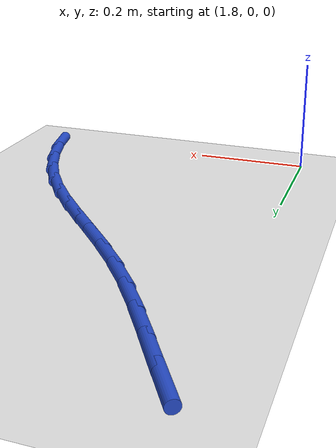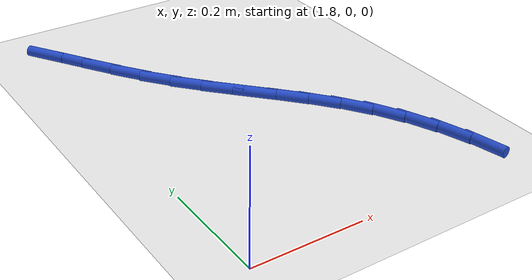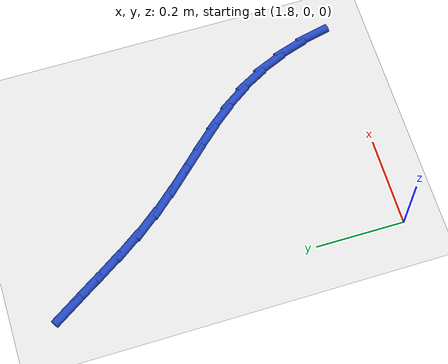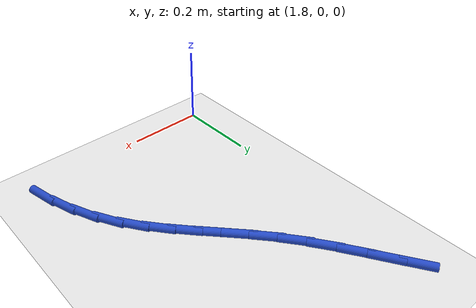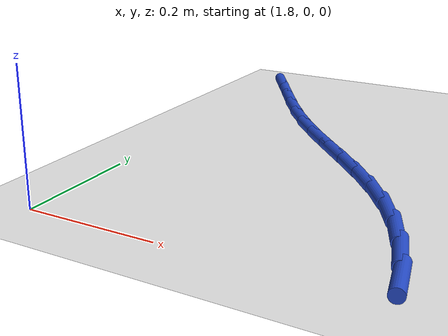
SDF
<sdf version="1.6">
 <world name="default">
  <model name="ground_plane">
   <static>1</static>
   <link name="link">
    <collision name="collision">
     <geometry><plane><normal>0 0 1</normal><size>100 100</size></plane></geometry>
     <surface><friction><ode><mu>100</mu><mu2>50</mu2></ode></friction></surface>
    </collision>
    <visual name="visual">
     <cast_shadows>0</cast_shadows>
     <geometry><plane><normal>0 0 1</normal><size>100 100</size></plane></geometry>
     <material>
      <script><uri>file://media/materials/scripts/gazebo.material</uri><name>Gazebo/WhiteGlow</name></script>
     </material>
    </visual>
   </link>
  </model>
  <model name="line">
   <link name="link_44">
    <pose>1.8163866586596318 0.7463960941090306 0.01 0 1.57 -1.0019165803802303</pose>
    <collision name="collision">
     <geometry><cylinder><radius>0.01</radius><length>0.08</length></cylinder></geometry>
    </collision>
    <visual name="visual">
     <material>
      <script><name>Gazebo/Blue</name><uri>file://media/materials/scripts/gazebo.material</uri></script>
     </material>
     <geometry><cylinder><radius>0.01</radius><length>0.08</length></cylinder></geometry>
    </visual>
   </link>
   <link name="link_45">
    <pose>1.850166147003812 0.6935652219333713 0.01 0 1.57 -1.0072756673513223</pose>
    <collision name="collision">
     <geometry><cylinder><radius>0.01</radius><length>0.08</length></cylinder></geometry>
    </collision>
    <visual name="visual">
     <material>
      <script><name>Gazebo/Blue</name><uri>file://media/materials/scripts/gazebo.material</uri></script>
     </material>
     <geometry><cylinder><radius>0.01</radius><length>0.08</length></cylinder></geometry>
    </visual>
   </link>
   <link name="link_46">
    <pose>1.8839846783671788 0.6400434476368833 0.01 0 1.57 -0.9925508794345471</pose>
    <collision name="collision">
     <geometry><cylinder><radius>0.01</radius><length>0.08</length></cylinder></geometry>
    </collision>
    <visual name="visual">
     <material>
      <script><name>Gazebo/Blue</name><uri>file://media/materials/scripts/gazebo.material</uri></script>
     </material>
     <geometry><cylinder><radius>0.01</radius><length>0.08</length></cylinder></geometry>
    </visual>
   </link>
   <link name="link_47">
    <pose>1.9185665266023766 0.5870577346554181 0.01 0 1.57 -0.9572777244401499</pose>
    <collision name="collision">
     <geometry><cylinder><radius>0.01</radius><length>0.08</length></cylinder></geometry>
    </collision>
    <visual name="visual">
     <material>
      <script><name>Gazebo/Blue</name><uri>file://media/materials/scripts/gazebo.material</uri></script>
     </material>
     <geometry><cylinder><radius>0.01</radius><length>0.08</length></cylinder></geometry>
    </visual>
   </link>
   <link name="link_48">
    <pose>1.9546359655620487 0.5358350464248284 0.01 0 1.57 -0.9016109762413029</pose>
    <collision name="collision">
     <geometry><cylinder><radius>0.01</radius><length>0.08</length></cylinder></geometry>
    </collision>
    <visual name="visual">
     <material>
      <script><name>Gazebo/Blue</name><uri>file://media/materials/scripts/gazebo.material</uri></script>
     </material>
     <geometry><cylinder><radius>0.01</radius><length>0.08</length></cylinder></geometry>
    </visual>
   </link>
   <link name="link_49">
    <pose>1.9928525185237038 0.4875164862851037 0.01 0 1.57 -0.8496062227470268</pose>
    <collision name="collision">
     <geometry><cylinder><radius>0.01</radius><length>0.08</length></cylinder></geometry>
    </collision>
    <visual name="visual">
     <material>
      <script><name>Gazebo/Blue</name><uri>file://media/materials/scripts/gazebo.material</uri></script>
     </material>
     <geometry><cylinder><radius>0.01</radius><length>0.08</length></cylinder></geometry>
    </visual>
   </link>
   <link name="link_50">
    <pose>2.032906479113344 0.44195794658594806 0.01 0 1.57 -0.8219156627113802</pose>
    <collision name="collision">
     <geometry><cylinder><radius>0.01</radius><length>0.08</length></cylinder></geometry>
    </collision>
    <visual name="visual">
     <material>
      <script><name>Gazebo/Blue</name><uri>file://media/materials/scripts/gazebo.material</uri></script>
     </material>
     <geometry><cylinder><radius>0.01</radius><length>0.08</length></cylinder></geometry>
    </visual>
   </link>
   <link name="link_51">
    <pose>2.073741837183386 0.3980257112695895 0.01 0 1.57 -0.8201858980150424</pose>
    <collision name="collision">
     <geometry><cylinder><radius>0.01</radius><length>0.08</length></cylinder></geometry>
    </collision>
    <visual name="visual">
     <material>
      <script><name>Gazebo/Blue</name><uri>file://media/materials/scripts/gazebo.material</uri></script>
     </material>
     <geometry><cylinder><radius>0.01</radius><length>0.08</length></cylinder></geometry>
    </visual>
   </link>
   <link name="link_52">
    <pose>2.1142833741490894 0.35456059364340825 0.01 0 1.57 -0.8451458580980586</pose>
    <collision name="collision">
     <geometry><cylinder><radius>0.01</radius><length>0.08</length></cylinder></geometry>
    </collision>
    <visual name="visual">
     <material>
      <script><name>Gazebo/Blue</name><uri>file://media/materials/scripts/gazebo.material</uri></script>
     </material>
     <geometry><cylinder><radius>0.01</radius><length>0.08</length></cylinder></geometry>
    </visual>
   </link>
   <link name="link_53">
    <pose>2.153455871425715 0.3104034070147858 0.01 0 1.57 -0.8970968191303288</pose>
    <collision name="collision">
     <geometry><cylinder><radius>0.01</radius><length>0.08</length></cylinder></geometry>
    </collision>
    <visual name="visual">
     <material>
      <script><name>Gazebo/Blue</name><uri>file://media/materials/scripts/gazebo.material</uri></script>
     </material>
     <geometry><cylinder><radius>0.01</radius><length>0.08</length></cylinder></geometry>
    </visual>
   </link>
   <link name="link_54">
    <pose>2.190184110428525 0.26439496469110213 0.01 0 1.57 -0.9753525999097448</pose>
    <collision name="collision">
     <geometry><cylinder><radius>0.01</radius><length>0.08</length></cylinder></geometry>
    </collision>
    <visual name="visual">
     <material>
      <script><name>Gazebo/Blue</name><uri>file://media/materials/scripts/gazebo.material</uri></script>
     </material>
     <geometry><cylinder><radius>0.01</radius><length>0.08</length></cylinder></geometry>
    </visual>
   </link>
   <link name="link_55">
    <pose>2.2233928725727794 0.2153760799797388 0.01 0 1.57 -1.075611147155816</pose>
    <collision name="collision">
     <geometry><cylinder><radius>0.01</radius><length>0.08</length></cylinder></geometry>
    </collision>
    <visual name="visual">
     <material>
      <script><name>Gazebo/Blue</name><uri>file://media/materials/scripts/gazebo.material</uri></script>
     </material>
     <geometry><cylinder><radius>0.01</radius><length>0.08</length></cylinder></geometry>
    </visual>
   </link>
   <link name="link_56">
    <pose>2.252064162960234 0.162287690258252 0.01 0 1.57 -1.1767576743385804</pose>
    <collision name="collision">
     <geometry><cylinder><radius>0.01</radius><length>0.08</length></cylinder></geometry>
    </collision>
    <visual name="visual">
     <material>
      <script><name>Gazebo/Blue</name><uri>file://media/materials/scripts/gazebo.material</uri></script>
     </material>
     <geometry><cylinder><radius>0.01</radius><length>0.08</length></cylinder></geometry>
    </visual>
   </link>
   <link name="link_57">
    <pose>2.275810869006467 0.10517458532849948 0.01 0 1.57 -1.2686857687241422</pose>
    <collision name="collision">
     <geometry><cylinder><radius>0.01</radius><length>0.08</length></cylinder></geometry>
    </collision>
    <visual name="visual">
     <material>
      <script><name>Gazebo/Blue</name><uri>file://media/materials/scripts/gazebo.material</uri></script>
     </material>
     <geometry><cylinder><radius>0.01</radius><length>0.08</length></cylinder></geometry>
    </visual>
   </link>
   <link name="link_58">
    <pose>2.2946371635947203 0.04476618571126081 0.01 0 1.57 -1.3532794711642486</pose>
    <collision name="collision">
     <geometry><cylinder><radius>0.01</radius><length>0.08</length></cylinder></geometry>
    </collision>
    <visual name="visual">
     <material>
      <script><name>Gazebo/Blue</name><uri>file://media/materials/scripts/gazebo.material</uri></script>
     </material>
     <geometry><cylinder><radius>0.01</radius><length>0.08</length></cylinder></geometry>
    </visual>
   </link>
  </model>
 </world>
</sdf>
